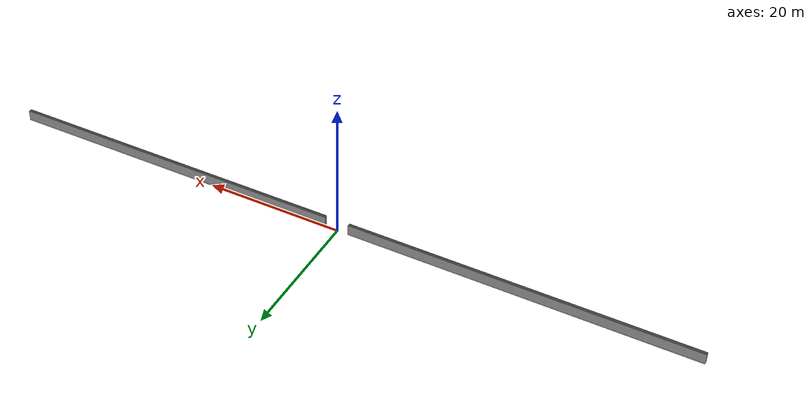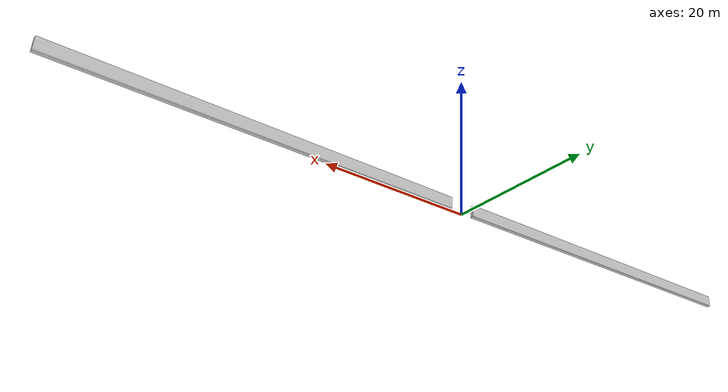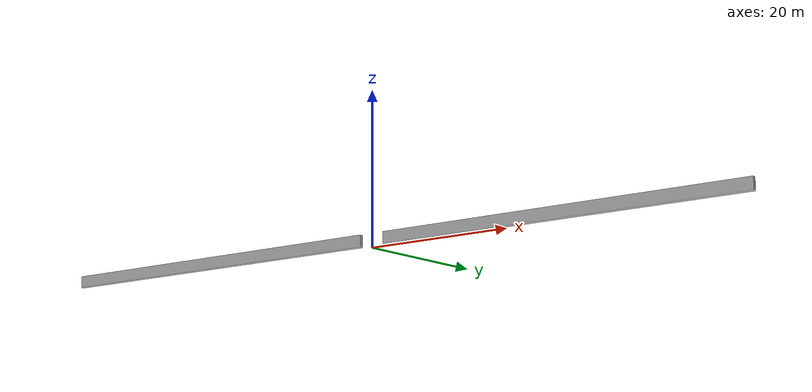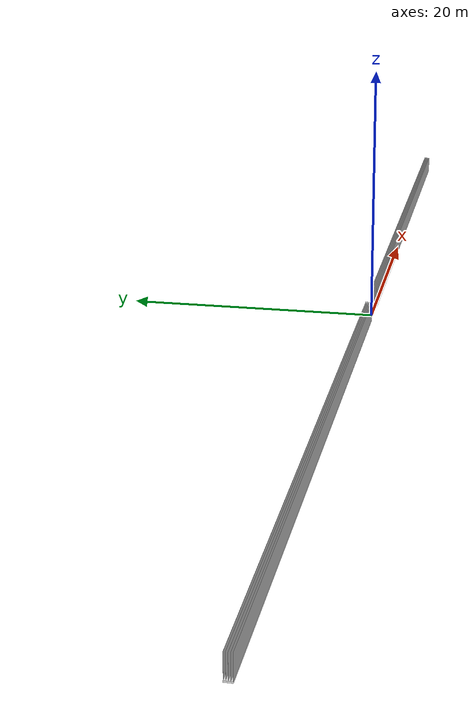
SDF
<sdf version='1.7'>
  <model name='plants'>
    <joint name='plants_joint' type='fixed'>
      <pose relative_to='__model__'>0 0 0.75 0 -0 0</pose>
      <parent>world</parent>
      <child>plants</child>
    </joint>
    <link name='plants'>
      <pose relative_to='plants_joint'>0 0 0 0 -0 0</pose>
      <inertial>
        <pose>17.835 0 0.033333 0 -0 0</pose>
        <mass>300000</mass>
        <inertia>
          <ixx>3.00427e+07</ixx>
          <ixy>0</ixy>
          <ixz>713200</ixz>
          <iyy>7.7729e+07</iyy>
          <iyz>0</iyz>
          <izz>7.76863e+07</izz>
        </inertia>
      </inertial>
      <collision name='plants_collision'>
        <pose>26.75 0 0.3 0 -0 0</pose>
        <geometry>
          <box>
            <size>50 0.5 1.5</size>
          </box>
        </geometry>
        <surface>
          <contact>
            <ode/>
          </contact>
          <friction>
            <ode/>
          </friction>
        </surface>
      </collision>
      <collision name='plants_collision_1'>
        <pose>-26.75 0 0.3 0 -0 0</pose>
        <geometry>
          <box>
            <size>50 0.5 1.5</size>
          </box>
        </geometry>
        <surface>
          <contact>
            <ode/>
          </contact>
          <friction>
            <ode/>
          </friction>
        </surface>
      </collision>
      <collision name='plants_fixed_joint_lump__pot_collision_2'>
        <pose>26.75 0 -0.5 0 -0 0</pose>
        <geometry>
          <box>
            <size>50 0.5 0.1</size>
          </box>
        </geometry>
        <surface>
          <contact>
            <ode/>
          </contact>
          <friction>
            <ode/>
          </friction>
        </surface>
      </collision>
      <collision name='plants_fixed_joint_lump__pot_collision_3'>
        <pose>-26.75 0 -0.5 0 -0 0</pose>
        <geometry>
          <box>
            <size>50 0.5 0.1</size>
          </box>
        </geometry>
        <surface>
          <contact>
            <ode/>
          </contact>
          <friction>
            <ode/>
          </friction>
        </surface>
      </collision>
      <visual name='plants_visual'>
        <pose>26.75 0.24 0.3 0 -0 0</pose>
        <geometry>
          <box>
            <size>50 0.001 1.5</size>
          </box>
        </geometry>
        <transparency>0.01</transparency>
        <material>
          <script>
            <name>plant/Difuse</name>
            <uri>file://media/materials/scripts/gazebo.material</uri>
          </script>
        </material>
      </visual>
      <visual name='plants_visual_1'>
        <pose>26.75 0 0.3 0 -0 0</pose>
        <geometry>
          <box>
            <size>50 0.001 1.5</size>
          </box>
        </geometry>
        <transparency>0.01</transparency>
        <material>
          <script>
            <name>plant/Difuse</name>
            <uri>file://media/materials/scripts/gazebo.material</uri>
          </script>
        </material>
      </visual>
      <visual name='plants_visual_2'>
        <pose>26.75 -0.24 0.3 0 -0 0</pose>
        <geometry>
          <box>
            <size>50 0.001 1.5</size>
          </box>
        </geometry>
        <transparency>0.01</transparency>
        <material>
          <script>
            <name>plant/Difuse</name>
            <uri>file://media/materials/scripts/gazebo.material</uri>
          </script>
        </material>
      </visual>
      <visual name='plants_visual_3'>
        <pose>-26.75 0.24 0.3 0 -0 0</pose>
        <geometry>
          <box>
            <size>50 0.001 1.5</size>
          </box>
        </geometry>
        <transparency>0.01</transparency>
        <material>
          <script>
            <name>plant/Difuse</name>
            <uri>file://media/materials/scripts/gazebo.material</uri>
          </script>
        </material>
      </visual>
      <visual name='plants_visual_4'>
        <pose>-26.75 0 0.3 0 -0 0</pose>
        <geometry>
          <box>
            <size>50 0.001 1.5</size>
          </box>
        </geometry>
        <transparency>0.01</transparency>
        <material>
          <script>
            <name>plant/Difuse</name>
            <uri>file://media/materials/scripts/gazebo.material</uri>
          </script>
        </material>
      </visual>
      <visual name='plants_visual_5'>
        <pose>-26.75 -0.24 0.3 0 -0 0</pose>
        <geometry>
          <box>
            <size>50 0.001 1.5</size>
          </box>
        </geometry>
        <transparency>0.01</transparency>
        <material>
          <script>
            <name>plant/Difuse</name>
            <uri>file://media/materials/scripts/gazebo.material</uri>
          </script>
        </material>
      </visual>
      <visual name='plants_fixed_joint_lump__plant_shift_visual_6'>
        <pose>26.755 0.125 0.3 0 -0 0</pose>
        <geometry>
          <box>
            <size>50 0.001 1.5</size>
          </box>
        </geometry>
        <transparency>0.01</transparency>
        <material>
          <script>
            <name>plant_shift/Difuse</name>
            <uri>file://media/materials/scripts/gazebo.material</uri>
          </script>
        </material>
      </visual>
      <visual name='plants_fixed_joint_lump__plant_shift_visual_7'>
        <pose>26.755 -0.125 0.3 0 -0 0</pose>
        <geometry>
          <box>
            <size>50 0.001 1.5</size>
          </box>
        </geometry>
        <transparency>0.01</transparency>
        <material>
          <script>
            <name>plant_shift/Difuse</name>
            <uri>file://media/materials/scripts/gazebo.material</uri>
          </script>
        </material>
      </visual>
      <visual name='plants_fixed_joint_lump__plant_shift_visual_8'>
        <pose>-26.745 0.125 0.3 0 -0 0</pose>
        <geometry>
          <box>
            <size>50 0.001 1.5</size>
          </box>
        </geometry>
        <transparency>0.01</transparency>
        <material>
          <script>
            <name>plant_shift/Difuse</name>
            <uri>file://media/materials/scripts/gazebo.material</uri>
          </script>
        </material>
      </visual>
      <visual name='plants_fixed_joint_lump__plant_shift_visual_9'>
        <pose>-26.745 -0.125 0.3 0 -0 0</pose>
        <geometry>
          <box>
            <size>50 0.001 1.5</size>
          </box>
        </geometry>
        <transparency>0.01</transparency>
        <material>
          <script>
            <name>plant_shift/Difuse</name>
            <uri>file://media/materials/scripts/gazebo.material</uri>
          </script>
        </material>
      </visual>
      <visual name='plants_fixed_joint_lump__pot_visual_10'>
        <pose>26.75 0 -0.5 0 -0 0</pose>
        <geometry>
          <box>
            <size>50 0.5 0.1</size>
          </box>
        </geometry>
        <material>
          <script>
            <name>Gazebo/White</name>
            <uri>file://media/materials/scripts/gazebo.material</uri>
          </script>
        </material>
      </visual>
      <visual name='plants_fixed_joint_lump__pot_visual_11'>
        <pose>-26.75 0 -0.5 0 -0 0</pose>
        <geometry>
          <box>
            <size>50 0.5 0.1</size>
          </box>
        </geometry>
        <material>
          <script>
            <name>Gazebo/White</name>
            <uri>file://media/materials/scripts/gazebo.material</uri>
          </script>
        </material>
      </visual>
    </link>
  </model>
</sdf>
